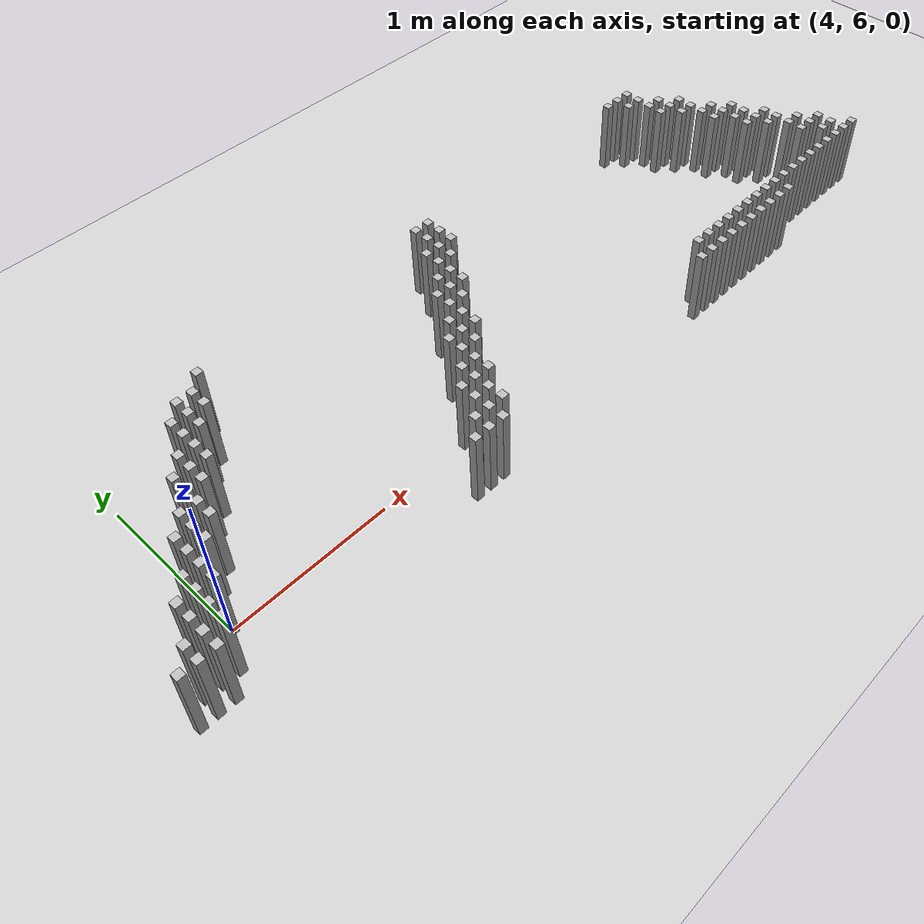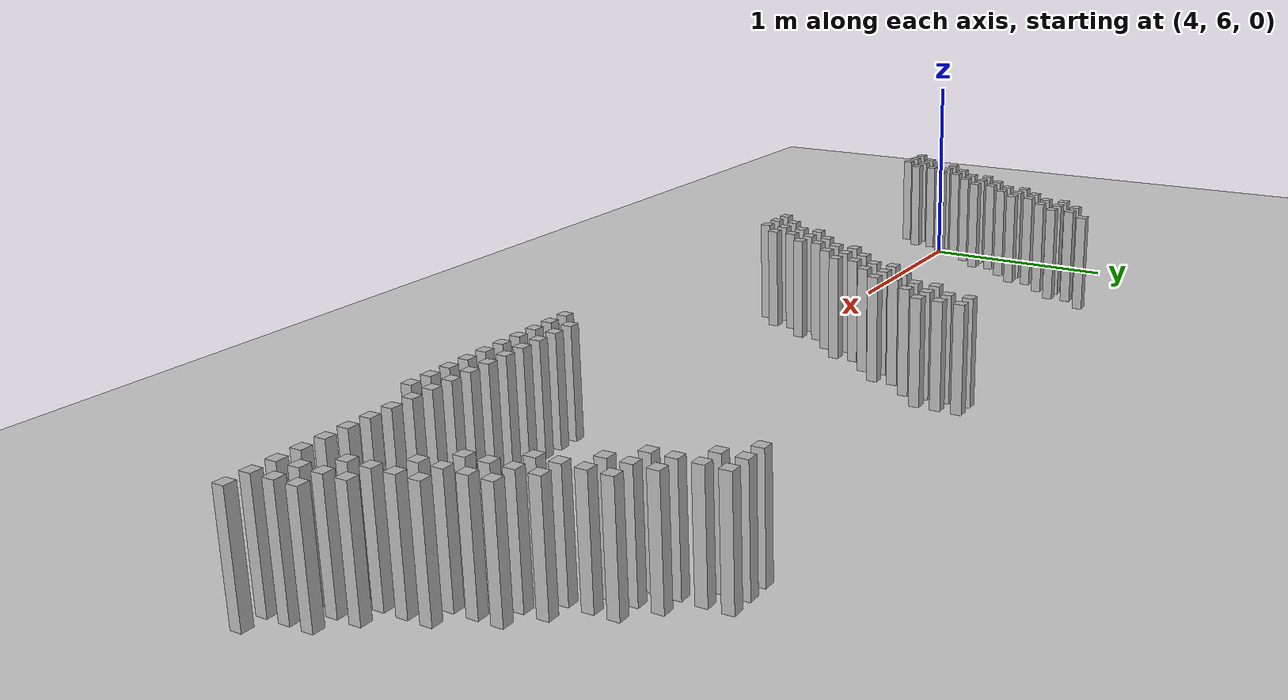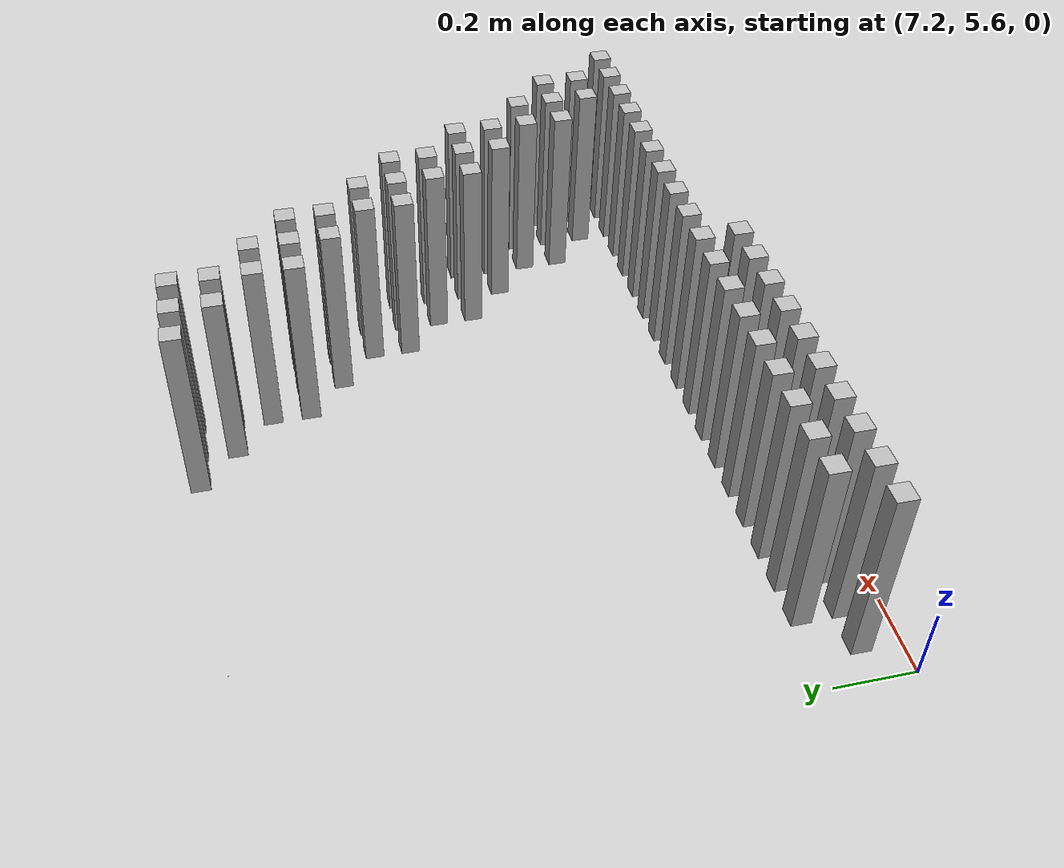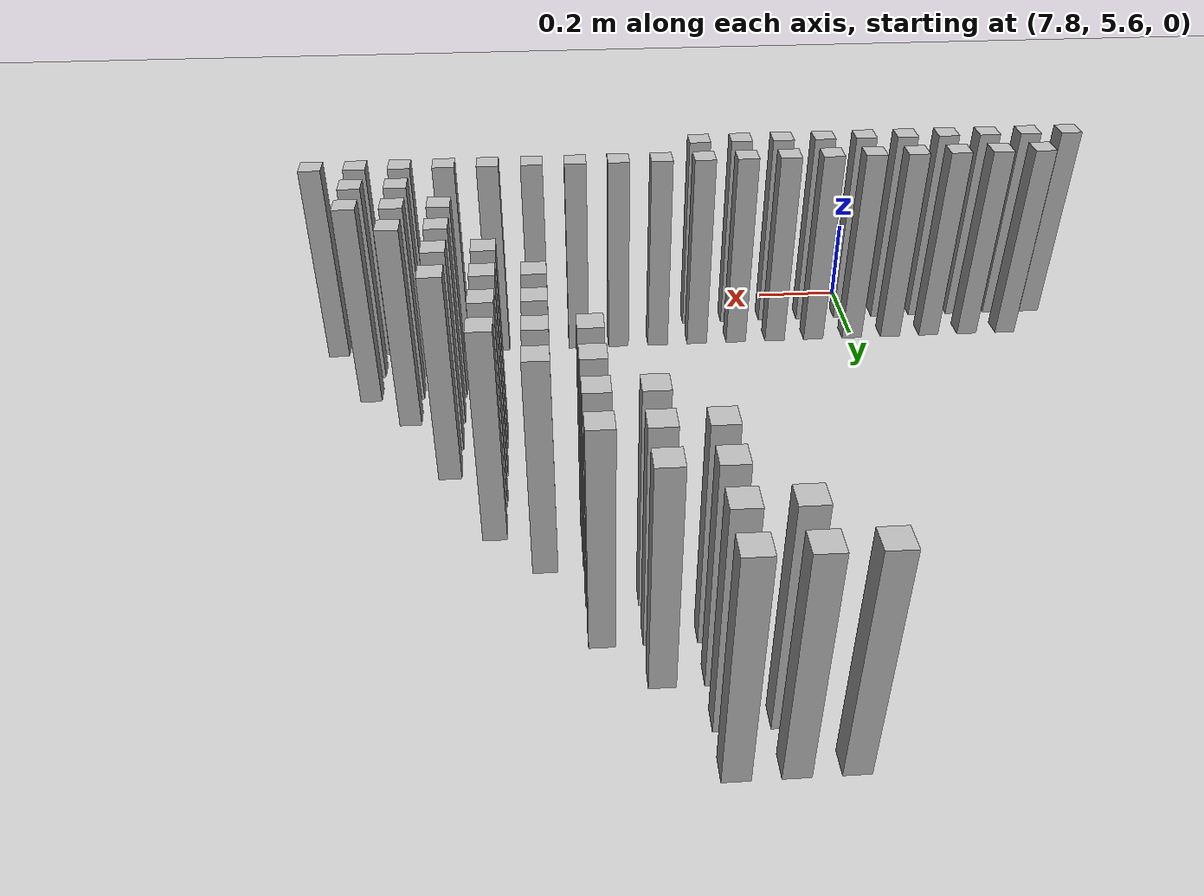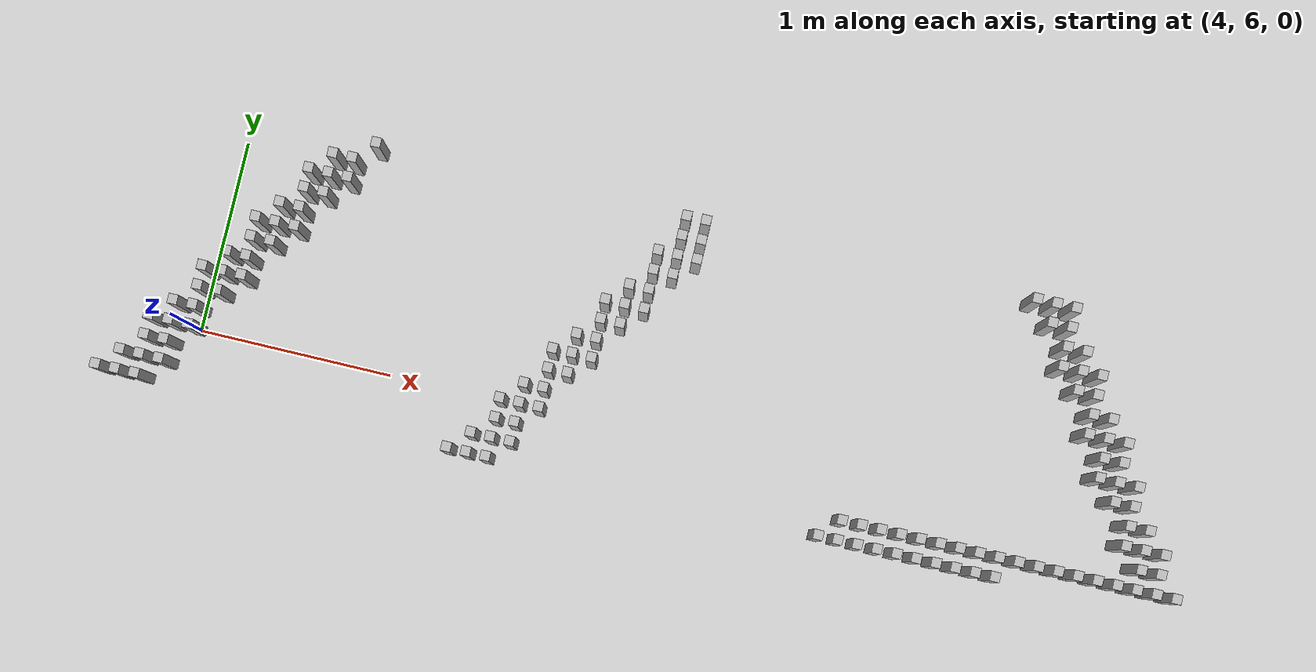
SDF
<sdf version="1.6">
 <world name="default_world">
  <include><uri>model://sun</uri></include>
  <include><uri>model://ground_plane</uri></include>
  <model name="wall_132">
   <static>true</static>
   <link name="link">
    <collision name="collision"><geometry><box><size>0.05 0.05 0.5</size></box></geometry></collision>
    <visual name="visual"><geometry><box><size>0.05 0.05 0.5</size></box></geometry></visual>
    <pose>4.7 7.1000000000000005 0.25 0 0 0</pose>
   </link>
  </model>
  <model name="wall_133">
   <static>true</static>
   <link name="link">
    <collision name="collision"><geometry><box><size>0.05 0.05 0.5</size></box></geometry></collision>
    <visual name="visual"><geometry><box><size>0.05 0.05 0.5</size></box></geometry></visual>
    <pose>6.300000000000001 7.1000000000000005 0.25 0 0 0</pose>
   </link>
  </model>
  <model name="wall_134">
   <static>true</static>
   <link name="link">
    <collision name="collision"><geometry><box><size>0.05 0.05 0.5</size></box></geometry></collision>
    <visual name="visual"><geometry><box><size>0.05 0.05 0.5</size></box></geometry></visual>
    <pose>6.4 7.1000000000000005 0.25 0 0 0</pose>
   </link>
  </model>
  <model name="wall_135">
   <static>true</static>
   <link name="link">
    <collision name="collision"><geometry><box><size>0.05 0.05 0.5</size></box></geometry></collision>
    <visual name="visual"><geometry><box><size>0.05 0.05 0.5</size></box></geometry></visual>
    <pose>8.1 7.1000000000000005 0.25 0 0 0</pose>
   </link>
  </model>
  <model name="wall_136">
   <static>true</static>
   <link name="link">
    <collision name="collision"><geometry><box><size>0.05 0.05 0.5</size></box></geometry></collision>
    <visual name="visual"><geometry><box><size>0.05 0.05 0.5</size></box></geometry></visual>
    <pose>8.200000000000001 7.1000000000000005 0.25 0 0 0</pose>
   </link>
  </model>
  <model name="wall_137">
   <static>true</static>
   <link name="link">
    <collision name="collision"><geometry><box><size>0.05 0.05 0.5</size></box></geometry></collision>
    <visual name="visual"><geometry><box><size>0.05 0.05 0.5</size></box></geometry></visual>
    <pose>8.3 7.1000000000000005 0.25 0 0 0</pose>
   </link>
  </model>
  <model name="wall_138">
   <static>true</static>
   <link name="link">
    <collision name="collision"><geometry><box><size>0.05 0.05 0.5</size></box></geometry></collision>
    <visual name="visual"><geometry><box><size>0.05 0.05 0.5</size></box></geometry></visual>
    <pose>4.5 7.0 0.25 0 0 0</pose>
   </link>
  </model>
  <model name="wall_139">
   <static>true</static>
   <link name="link">
    <collision name="collision"><geometry><box><size>0.05 0.05 0.5</size></box></geometry></collision>
    <visual name="visual"><geometry><box><size>0.05 0.05 0.5</size></box></geometry></visual>
    <pose>4.6000000000000005 7.0 0.25 0 0 0</pose>
   </link>
  </model>
  <model name="wall_140">
   <static>true</static>
   <link name="link">
    <collision name="collision"><geometry><box><size>0.05 0.05 0.5</size></box></geometry></collision>
    <visual name="visual"><geometry><box><size>0.05 0.05 0.5</size></box></geometry></visual>
    <pose>6.300000000000001 7.0 0.25 0 0 0</pose>
   </link>
  </model>
  <model name="wall_141">
   <static>true</static>
   <link name="link">
    <collision name="collision"><geometry><box><size>0.05 0.05 0.5</size></box></geometry></collision>
    <visual name="visual"><geometry><box><size>0.05 0.05 0.5</size></box></geometry></visual>
    <pose>6.4 7.0 0.25 0 0 0</pose>
   </link>
  </model>
  <model name="wall_142">
   <static>true</static>
   <link name="link">
    <collision name="collision"><geometry><box><size>0.05 0.05 0.5</size></box></geometry></collision>
    <visual name="visual"><geometry><box><size>0.05 0.05 0.5</size></box></geometry></visual>
    <pose>8.200000000000001 7.0 0.25 0 0 0</pose>
   </link>
  </model>
  <model name="wall_143">
   <static>true</static>
   <link name="link">
    <collision name="collision"><geometry><box><size>0.05 0.05 0.5</size></box></geometry></collision>
    <visual name="visual"><geometry><box><size>0.05 0.05 0.5</size></box></geometry></visual>
    <pose>8.3 7.0 0.25 0 0 0</pose>
   </link>
  </model>
  <model name="wall_144">
   <static>true</static>
   <link name="link">
    <collision name="collision"><geometry><box><size>0.05 0.05 0.5</size></box></geometry></collision>
    <visual name="visual"><geometry><box><size>0.05 0.05 0.5</size></box></geometry></visual>
    <pose>4.4 6.9 0.25 0 0 0</pose>
   </link>
  </model>
  <model name="wall_145">
   <static>true</static>
   <link name="link">
    <collision name="collision"><geometry><box><size>0.05 0.05 0.5</size></box></geometry></collision>
    <visual name="visual"><geometry><box><size>0.05 0.05 0.5</size></box></geometry></visual>
    <pose>4.5 6.9 0.25 0 0 0</pose>
   </link>
  </model>
  <model name="wall_146">
   <static>true</static>
   <link name="link">
    <collision name="collision"><geometry><box><size>0.05 0.05 0.5</size></box></geometry></collision>
    <visual name="visual"><geometry><box><size>0.05 0.05 0.5</size></box></geometry></visual>
    <pose>4.6000000000000005 6.9 0.25 0 0 0</pose>
   </link>
  </model>
  <model name="wall_147">
   <static>true</static>
   <link name="link">
    <collision name="collision"><geometry><box><size>0.05 0.05 0.5</size></box></geometry></collision>
    <visual name="visual"><geometry><box><size>0.05 0.05 0.5</size></box></geometry></visual>
    <pose>6.2 6.9 0.25 0 0 0</pose>
   </link>
  </model>
  <model name="wall_148">
   <static>true</static>
   <link name="link">
    <collision name="collision"><geometry><box><size>0.05 0.05 0.5</size></box></geometry></collision>
    <visual name="visual"><geometry><box><size>0.05 0.05 0.5</size></box></geometry></visual>
    <pose>6.300000000000001 6.9 0.25 0 0 0</pose>
   </link>
  </model>
  <model name="wall_149">
   <static>true</static>
   <link name="link">
    <collision name="collision"><geometry><box><size>0.05 0.05 0.5</size></box></geometry></collision>
    <visual name="visual"><geometry><box><size>0.05 0.05 0.5</size></box></geometry></visual>
    <pose>6.4 6.9 0.25 0 0 0</pose>
   </link>
  </model>
  <model name="wall_150">
   <static>true</static>
   <link name="link">
    <collision name="collision"><geometry><box><size>0.05 0.05 0.5</size></box></geometry></collision>
    <visual name="visual"><geometry><box><size>0.05 0.05 0.5</size></box></geometry></visual>
    <pose>8.3 6.9 0.25 0 0 0</pose>
   </link>
  </model>
  <model name="wall_151">
   <static>true</static>
   <link name="link">
    <collision name="collision"><geometry><box><size>0.05 0.05 0.5</size></box></geometry></collision>
    <visual name="visual"><geometry><box><size>0.05 0.05 0.5</size></box></geometry></visual>
    <pose>8.4 6.9 0.25 0 0 0</pose>
   </link>
  </model>
  <model name="wall_152">
   <static>true</static>
   <link name="link">
    <collision name="collision"><geometry><box><size>0.05 0.05 0.5</size></box></geometry></collision>
    <visual name="visual"><geometry><box><size>0.05 0.05 0.5</size></box></geometry></visual>
    <pose>4.4 6.800000000000001 0.25 0 0 0</pose>
   </link>
  </model>
  <model name="wall_153">
   <static>true</static>
   <link name="link">
    <collision name="collision"><geometry><box><size>0.05 0.05 0.5</size></box></geometry></collision>
    <visual name="visual"><geometry><box><size>0.05 0.05 0.5</size></box></geometry></visual>
    <pose>4.5 6.800000000000001 0.25 0 0 0</pose>
   </link>
  </model>
  <model name="wall_154">
   <static>true</static>
   <link name="link">
    <collision name="collision"><geometry><box><size>0.05 0.05 0.5</size></box></geometry></collision>
    <visual name="visual"><geometry><box><size>0.05 0.05 0.5</size></box></geometry></visual>
    <pose>6.2 6.800000000000001 0.25 0 0 0</pose>
   </link>
  </model>
  <model name="wall_155">
   <static>true</static>
   <link name="link">
    <collision name="collision"><geometry><box><size>0.05 0.05 0.5</size></box></geometry></collision>
    <visual name="visual"><geometry><box><size>0.05 0.05 0.5</size></box></geometry></visual>
    <pose>6.300000000000001 6.800000000000001 0.25 0 0 0</pose>
   </link>
  </model>
  <model name="wall_156">
   <static>true</static>
   <link name="link">
    <collision name="collision"><geometry><box><size>0.05 0.05 0.5</size></box></geometry></collision>
    <visual name="visual"><geometry><box><size>0.05 0.05 0.5</size></box></geometry></visual>
    <pose>8.3 6.800000000000001 0.25 0 0 0</pose>
   </link>
  </model>
  <model name="wall_157">
   <static>true</static>
   <link name="link">
    <collision name="collision"><geometry><box><size>0.05 0.05 0.5</size></box></geometry></collision>
    <visual name="visual"><geometry><box><size>0.05 0.05 0.5</size></box></geometry></visual>
    <pose>8.4 6.800000000000001 0.25 0 0 0</pose>
   </link>
  </model>
  <model name="wall_158">
   <static>true</static>
   <link name="link">
    <collision name="collision"><geometry><box><size>0.05 0.05 0.5</size></box></geometry></collision>
    <visual name="visual"><geometry><box><size>0.05 0.05 0.5</size></box></geometry></visual>
    <pose>8.5 6.800000000000001 0.25 0 0 0</pose>
   </link>
  </model>
  <model name="wall_159">
   <static>true</static>
   <link name="link">
    <collision name="collision"><geometry><box><size>0.05 0.05 0.5</size></box></geometry></collision>
    <visual name="visual"><geometry><box><size>0.05 0.05 0.5</size></box></geometry></visual>
    <pose>4.3 6.7 0.25 0 0 0</pose>
   </link>
  </model>
  <model name="wall_160">
   <static>true</static>
   <link name="link">
    <collision name="collision"><geometry><box><size>0.05 0.05 0.5</size></box></geometry></collision>
    <visual name="visual"><geometry><box><size>0.05 0.05 0.5</size></box></geometry></visual>
    <pose>4.4 6.7 0.25 0 0 0</pose>
   </link>
  </model>
  <model name="wall_161">
   <static>true</static>
   <link name="link">
    <collision name="collision"><geometry><box><size>0.05 0.05 0.5</size></box></geometry></collision>
    <visual name="visual"><geometry><box><size>0.05 0.05 0.5</size></box></geometry></visual>
    <pose>6.1000000000000005 6.7 0.25 0 0 0</pose>
   </link>
  </model>
  <model name="wall_162">
   <static>true</static>
   <link name="link">
    <collision name="collision"><geometry><box><size>0.05 0.05 0.5</size></box></geometry></collision>
    <visual name="visual"><geometry><box><size>0.05 0.05 0.5</size></box></geometry></visual>
    <pose>6.2 6.7 0.25 0 0 0</pose>
   </link>
  </model>
  <model name="wall_163">
   <static>true</static>
   <link name="link">
    <collision name="collision"><geometry><box><size>0.05 0.05 0.5</size></box></geometry></collision>
    <visual name="visual"><geometry><box><size>0.05 0.05 0.5</size></box></geometry></visual>
    <pose>8.4 6.7 0.25 0 0 0</pose>
   </link>
  </model>
  <model name="wall_164">
   <static>true</static>
   <link name="link">
    <collision name="collision"><geometry><box><size>0.05 0.05 0.5</size></box></geometry></collision>
    <visual name="visual"><geometry><box><size>0.05 0.05 0.5</size></box></geometry></visual>
    <pose>8.5 6.7 0.25 0 0 0</pose>
   </link>
  </model>
  <model name="wall_165">
   <static>true</static>
   <link name="link">
    <collision name="collision"><geometry><box><size>0.05 0.05 0.5</size></box></geometry></collision>
    <visual name="visual"><geometry><box><size>0.05 0.05 0.5</size></box></geometry></visual>
    <pose>4.2 6.6000000000000005 0.25 0 0 0</pose>
   </link>
  </model>
  <model name="wall_166">
   <static>true</static>
   <link name="link">
    <collision name="collision"><geometry><box><size>0.05 0.05 0.5</size></box></geometry></collision>
    <visual name="visual"><geometry><box><size>0.05 0.05 0.5</size></box></geometry></visual>
    <pose>4.3 6.6000000000000005 0.25 0 0 0</pose>
   </link>
  </model>
  <model name="wall_167">
   <static>true</static>
   <link name="link">
    <collision name="collision"><geometry><box><size>0.05 0.05 0.5</size></box></geometry></collision>
    <visual name="visual"><geometry><box><size>0.05 0.05 0.5</size></box></geometry></visual>
    <pose>4.4 6.6000000000000005 0.25 0 0 0</pose>
   </link>
  </model>
  <model name="wall_168">
   <static>true</static>
   <link name="link">
    <collision name="collision"><geometry><box><size>0.05 0.05 0.5</size></box></geometry></collision>
    <visual name="visual"><geometry><box><size>0.05 0.05 0.5</size></box></geometry></visual>
    <pose>6.0 6.6000000000000005 0.25 0 0 0</pose>
   </link>
  </model>
  <model name="wall_169">
   <static>true</static>
   <link name="link">
    <collision name="collision"><geometry><box><size>0.05 0.05 0.5</size></box></geometry></collision>
    <visual name="visual"><geometry><box><size>0.05 0.05 0.5</size></box></geometry></visual>
    <pose>6.1000000000000005 6.6000000000000005 0.25 0 0 0</pose>
   </link>
  </model>
  <model name="wall_170">
   <static>true</static>
   <link name="link">
    <collision name="collision"><geometry><box><size>0.05 0.05 0.5</size></box></geometry></collision>
    <visual name="visual"><geometry><box><size>0.05 0.05 0.5</size></box></geometry></visual>
    <pose>6.2 6.6000000000000005 0.25 0 0 0</pose>
   </link>
  </model>
  <model name="wall_171">
   <static>true</static>
   <link name="link">
    <collision name="collision"><geometry><box><size>0.05 0.05 0.5</size></box></geometry></collision>
    <visual name="visual"><geometry><box><size>0.05 0.05 0.5</size></box></geometry></visual>
    <pose>8.5 6.6000000000000005 0.25 0 0 0</pose>
   </link>
  </model>
  <model name="wall_172">
   <static>true</static>
   <link name="link">
    <collision name="collision"><geometry><box><size>0.05 0.05 0.5</size></box></geometry></collision>
    <visual name="visual"><geometry><box><size>0.05 0.05 0.5</size></box></geometry></visual>
    <pose>8.6 6.6000000000000005 0.25 0 0 0</pose>
   </link>
  </model>
  <model name="wall_173">
   <static>true</static>
   <link name="link">
    <collision name="collision"><geometry><box><size>0.05 0.05 0.5</size></box></geometry></collision>
    <visual name="visual"><geometry><box><size>0.05 0.05 0.5</size></box></geometry></visual>
    <pose>4.2 6.5 0.25 0 0 0</pose>
   </link>
  </model>
  <model name="wall_174">
   <static>true</static>
   <link name="link">
    <collision name="collision"><geometry><box><size>0.05 0.05 0.5</size></box></geometry></collision>
    <visual name="visual"><geometry><box><size>0.05 0.05 0.5</size></box></geometry></visual>
    <pose>4.3 6.5 0.25 0 0 0</pose>
   </link>
  </model>
  <model name="wall_175">
   <static>true</static>
   <link name="link">
    <collision name="collision"><geometry><box><size>0.05 0.05 0.5</size></box></geometry></collision>
    <visual name="visual"><geometry><box><size>0.05 0.05 0.5</size></box></geometry></visual>
    <pose>6.0 6.5 0.25 0 0 0</pose>
   </link>
  </model>
  <model name="wall_176">
   <static>true</static>
   <link name="link">
    <collision name="collision"><geometry><box><size>0.05 0.05 0.5</size></box></geometry></collision>
    <visual name="visual"><geometry><box><size>0.05 0.05 0.5</size></box></geometry></visual>
    <pose>6.1000000000000005 6.5 0.25 0 0 0</pose>
   </link>
  </model>
  <model name="wall_177">
   <static>true</static>
   <link name="link">
    <collision name="collision"><geometry><box><size>0.05 0.05 0.5</size></box></geometry></collision>
    <visual name="visual"><geometry><box><size>0.05 0.05 0.5</size></box></geometry></visual>
    <pose>8.5 6.5 0.25 0 0 0</pose>
   </link>
  </model>
  <model name="wall_178">
   <static>true</static>
   <link name="link">
    <collision name="collision"><geometry><box><size>0.05 0.05 0.5</size></box></geometry></collision>
    <visual name="visual"><geometry><box><size>0.05 0.05 0.5</size></box></geometry></visual>
    <pose>8.6 6.5 0.25 0 0 0</pose>
   </link>
  </model>
  <model name="wall_179">
   <static>true</static>
   <link name="link">
    <collision name="collision"><geometry><box><size>0.05 0.05 0.5</size></box></geometry></collision>
    <visual name="visual"><geometry><box><size>0.05 0.05 0.5</size></box></geometry></visual>
    <pose>8.700000000000001 6.5 0.25 0 0 0</pose>
   </link>
  </model>
  <model name="wall_180">
   <static>true</static>
   <link name="link">
    <collision name="collision"><geometry><box><size>0.05 0.05 0.5</size></box></geometry></collision>
    <visual name="visual"><geometry><box><size>0.05 0.05 0.5</size></box></geometry></visual>
    <pose>4.1000000000000005 6.4 0.25 0 0 0</pose>
   </link>
  </model>
  <model name="wall_181">
   <static>true</static>
   <link name="link">
    <collision name="collision"><geometry><box><size>0.05 0.05 0.5</size></box></geometry></collision>
    <visual name="visual"><geometry><box><size>0.05 0.05 0.5</size></box></geometry></visual>
    <pose>4.2 6.4 0.25 0 0 0</pose>
   </link>
  </model>
  <model name="wall_182">
   <static>true</static>
   <link name="link">
    <collision name="collision"><geometry><box><size>0.05 0.05 0.5</size></box></geometry></collision>
    <visual name="visual"><geometry><box><size>0.05 0.05 0.5</size></box></geometry></visual>
    <pose>5.9 6.4 0.25 0 0 0</pose>
   </link>
  </model>
  <model name="wall_183">
   <static>true</static>
   <link name="link">
    <collision name="collision"><geometry><box><size>0.05 0.05 0.5</size></box></geometry></collision>
    <visual name="visual"><geometry><box><size>0.05 0.05 0.5</size></box></geometry></visual>
    <pose>6.0 6.4 0.25 0 0 0</pose>
   </link>
  </model>
  <model name="wall_184">
   <static>true</static>
   <link name="link">
    <collision name="collision"><geometry><box><size>0.05 0.05 0.5</size></box></geometry></collision>
    <visual name="visual"><geometry><box><size>0.05 0.05 0.5</size></box></geometry></visual>
    <pose>8.6 6.4 0.25 0 0 0</pose>
   </link>
  </model>
  <model name="wall_185">
   <static>true</static>
   <link name="link">
    <collision name="collision"><geometry><box><size>0.05 0.05 0.5</size></box></geometry></collision>
    <visual name="visual"><geometry><box><size>0.05 0.05 0.5</size></box></geometry></visual>
    <pose>8.700000000000001 6.4 0.25 0 0 0</pose>
   </link>
  </model>
  <model name="wall_186">
   <static>true</static>
   <link name="link">
    <collision name="collision"><geometry><box><size>0.05 0.05 0.5</size></box></geometry></collision>
    <visual name="visual"><geometry><box><size>0.05 0.05 0.5</size></box></geometry></visual>
    <pose>4.0 6.300000000000001 0.25 0 0 0</pose>
   </link>
  </model>
  <model name="wall_187">
   <static>true</static>
   <link name="link">
    <collision name="collision"><geometry><box><size>0.05 0.05 0.5</size></box></geometry></collision>
    <visual name="visual"><geometry><box><size>0.05 0.05 0.5</size></box></geometry></visual>
    <pose>4.1000000000000005 6.300000000000001 0.25 0 0 0</pose>
   </link>
  </model>
  <model name="wall_188">
   <static>true</static>
   <link name="link">
    <collision name="collision"><geometry><box><size>0.05 0.05 0.5</size></box></geometry></collision>
    <visual name="visual"><geometry><box><size>0.05 0.05 0.5</size></box></geometry></visual>
    <pose>4.2 6.300000000000001 0.25 0 0 0</pose>
   </link>
  </model>
  <model name="wall_189">
   <static>true</static>
   <link name="link">
    <collision name="collision"><geometry><box><size>0.05 0.05 0.5</size></box></geometry></collision>
    <visual name="visual"><geometry><box><size>0.05 0.05 0.5</size></box></geometry></visual>
    <pose>5.800000000000001 6.300000000000001 0.25 0 0 0</pose>
   </link>
  </model>
  <model name="wall_190">
   <static>true</static>
   <link name="link">
    <collision name="collision"><geometry><box><size>0.05 0.05 0.5</size></box></geometry></collision>
    <visual name="visual"><geometry><box><size>0.05 0.05 0.5</size></box></geometry></visual>
    <pose>5.9 6.300000000000001 0.25 0 0 0</pose>
   </link>
  </model>
  <model name="wall_191">
   <static>true</static>
   <link name="link">
    <collision name="collision"><geometry><box><size>0.05 0.05 0.5</size></box></geometry></collision>
    <visual name="visual"><geometry><box><size>0.05 0.05 0.5</size></box></geometry></visual>
    <pose>6.0 6.300000000000001 0.25 0 0 0</pose>
   </link>
  </model>
  <model name="wall_192">
   <static>true</static>
   <link name="link">
    <collision name="collision"><geometry><box><size>0.05 0.05 0.5</size></box></geometry></collision>
    <visual name="visual"><geometry><box><size>0.05 0.05 0.5</size></box></geometry></visual>
    <pose>8.6 6.300000000000001 0.25 0 0 0</pose>
   </link>
  </model>
  <model name="wall_193">
   <static>true</static>
   <link name="link">
    <collision name="collision"><geometry><box><size>0.05 0.05 0.5</size></box></geometry></collision>
    <visual name="visual"><geometry><box><size>0.05 0.05 0.5</size></box></geometry></visual>
    <pose>8.700000000000001 6.300000000000001 0.25 0 0 0</pose>
   </link>
  </model>
  <model name="wall_194">
   <static>true</static>
   <link name="link">
    <collision name="collision"><geometry><box><size>0.05 0.05 0.5</size></box></geometry></collision>
    <visual name="visual"><geometry><box><size>0.05 0.05 0.5</size></box></geometry></visual>
    <pose>8.8 6.300000000000001 0.25 0 0 0</pose>
   </link>
  </model>
  <model name="wall_195">
   <static>true</static>
   <link name="link">
    <collision name="collision"><geometry><box><size>0.05 0.05 0.5</size></box></geometry></collision>
    <visual name="visual"><geometry><box><size>0.05 0.05 0.5</size></box></geometry></visual>
    <pose>4.0 6.2 0.25 0 0 0</pose>
   </link>
  </model>
  <model name="wall_196">
   <static>true</static>
   <link name="link">
    <collision name="collision"><geometry><box><size>0.05 0.05 0.5</size></box></geometry></collision>
    <visual name="visual"><geometry><box><size>0.05 0.05 0.5</size></box></geometry></visual>
    <pose>4.1000000000000005 6.2 0.25 0 0 0</pose>
   </link>
  </model>
  <model name="wall_197">
   <static>true</static>
   <link name="link">
    <collision name="collision"><geometry><box><size>0.05 0.05 0.5</size></box></geometry></collision>
    <visual name="visual"><geometry><box><size>0.05 0.05 0.5</size></box></geometry></visual>
    <pose>5.800000000000001 6.2 0.25 0 0 0</pose>
   </link>
  </model>
  <model name="wall_198">
   <static>true</static>
   <link name="link">
    <collision name="collision"><geometry><box><size>0.05 0.05 0.5</size></box></geometry></collision>
    <visual name="visual"><geometry><box><size>0.05 0.05 0.5</size></box></geometry></visual>
    <pose>5.9 6.2 0.25 0 0 0</pose>
   </link>
  </model>
  <model name="wall_199">
   <static>true</static>
   <link name="link">
    <collision name="collision"><geometry><box><size>0.05 0.05 0.5</size></box></geometry></collision>
    <visual name="visual"><geometry><box><size>0.05 0.05 0.5</size></box></geometry></visual>
    <pose>8.700000000000001 6.2 0.25 0 0 0</pose>
   </link>
  </model>
  <model name="wall_200">
   <static>true</static>
   <link name="link">
    <collision name="collision"><geometry><box><size>0.05 0.05 0.5</size></box></geometry></collision>
    <visual name="visual"><geometry><box><size>0.05 0.05 0.5</size></box></geometry></visual>
    <pose>8.8 6.2 0.25 0 0 0</pose>
   </link>
  </model>
  <model name="wall_201">
   <static>true</static>
   <link name="link">
    <collision name="collision"><geometry><box><size>0.05 0.05 0.5</size></box></geometry></collision>
    <visual name="visual"><geometry><box><size>0.05 0.05 0.5</size></box></geometry></visual>
    <pose>3.9000000000000004 6.1000000000000005 0.25 0 0 0</pose>
   </link>
  </model>
  <model name="wall_202">
   <static>true</static>
   <link name="link">
    <collision name="collision"><geometry><box><size>0.05 0.05 0.5</size></box></geometry></collision>
    <visual name="visual"><geometry><box><size>0.05 0.05 0.5</size></box></geometry></visual>
    <pose>4.0 6.1000000000000005 0.25 0 0 0</pose>
   </link>
  </model>
  <model name="wall_203">
   <static>true</static>
   <link name="link">
    <collision name="collision"><geometry><box><size>0.05 0.05 0.5</size></box></geometry></collision>
    <visual name="visual"><geometry><box><size>0.05 0.05 0.5</size></box></geometry></visual>
    <pose>5.7 6.1000000000000005 0.25 0 0 0</pose>
   </link>
  </model>
  <model name="wall_204">
   <static>true</static>
   <link name="link">
    <collision name="collision"><geometry><box><size>0.05 0.05 0.5</size></box></geometry></collision>
    <visual name="visual"><geometry><box><size>0.05 0.05 0.5</size></box></geometry></visual>
    <pose>5.800000000000001 6.1000000000000005 0.25 0 0 0</pose>
   </link>
  </model>
  <model name="wall_205">
   <static>true</static>
   <link name="link">
    <collision name="collision"><geometry><box><size>0.05 0.05 0.5</size></box></geometry></collision>
    <visual name="visual"><geometry><box><size>0.05 0.05 0.5</size></box></geometry></visual>
    <pose>8.8 6.1000000000000005 0.25 0 0 0</pose>
   </link>
  </model>
  <model name="wall_206">
   <static>true</static>
   <link name="link">
    <collision name="collision"><geometry><box><size>0.05 0.05 0.5</size></box></geometry></collision>
    <visual name="visual"><geometry><box><size>0.05 0.05 0.5</size></box></geometry></visual>
    <pose>8.9 6.1000000000000005 0.25 0 0 0</pose>
   </link>
  </model>
  <model name="wall_207">
   <static>true</static>
   <link name="link">
    <collision name="collision"><geometry><box><size>0.05 0.05 0.5</size></box></geometry></collision>
    <visual name="visual"><geometry><box><size>0.05 0.05 0.5</size></box></geometry></visual>
    <pose>3.8000000000000003 6.0 0.25 0 0 0</pose>
   </link>
  </model>
  <model name="wall_208">
   <static>true</static>
   <link name="link">
    <collision name="collision"><geometry><box><size>0.05 0.05 0.5</size></box></geometry></collision>
    <visual name="visual"><geometry><box><size>0.05 0.05 0.5</size></box></geometry></visual>
    <pose>3.9000000000000004 6.0 0.25 0 0 0</pose>
   </link>
  </model>
  <model name="wall_209">
   <static>true</static>
   <link name="link">
    <collision name="collision"><geometry><box><size>0.05 0.05 0.5</size></box></geometry></collision>
    <visual name="visual"><geometry><box><size>0.05 0.05 0.5</size></box></geometry></visual>
    <pose>4.0 6.0 0.25 0 0 0</pose>
   </link>
  </model>
  <model name="wall_210">
   <static>true</static>
   <link name="link">
    <collision name="collision"><geometry><box><size>0.05 0.05 0.5</size></box></geometry></collision>
    <visual name="visual"><geometry><box><size>0.05 0.05 0.5</size></box></geometry></visual>
    <pose>5.6000000000000005 6.0 0.25 0 0 0</pose>
   </link>
  </model>
  <model name="wall_211">
   <static>true</static>
   <link name="link">
    <collision name="collision"><geometry><box><size>0.05 0.05 0.5</size></box></geometry></collision>
    <visual name="visual"><geometry><box><size>0.05 0.05 0.5</size></box></geometry></visual>
    <pose>5.7 6.0 0.25 0 0 0</pose>
   </link>
  </model>
  <model name="wall_212">
   <static>true</static>
   <link name="link">
    <collision name="collision"><geometry><box><size>0.05 0.05 0.5</size></box></geometry></collision>
    <visual name="visual"><geometry><box><size>0.05 0.05 0.5</size></box></geometry></visual>
    <pose>5.800000000000001 6.0 0.25 0 0 0</pose>
   </link>
  </model>
  <model name="wall_213">
   <static>true</static>
   <link name="link">
    <collision name="collision"><geometry><box><size>0.05 0.05 0.5</size></box></geometry></collision>
    <visual name="visual"><geometry><box><size>0.05 0.05 0.5</size></box></geometry></visual>
    <pose>8.8 6.0 0.25 0 0 0</pose>
   </link>
  </model>
  <model name="wall_214">
   <static>true</static>
   <link name="link">
    <collision name="collision"><geometry><box><size>0.05 0.05 0.5</size></box></geometry></collision>
    <visual name="visual"><geometry><box><size>0.05 0.05 0.5</size></box></geometry></visual>
    <pose>8.9 6.0 0.25 0 0 0</pose>
   </link>
  </model>
  <model name="wall_215">
   <static>true</static>
   <link name="link">
    <collision name="collision"><geometry><box><size>0.05 0.05 0.5</size></box></geometry></collision>
    <visual name="visual"><geometry><box><size>0.05 0.05 0.5</size></box></geometry></visual>
    <pose>9.0 6.0 0.25 0 0 0</pose>
   </link>
  </model>
  <model name="wall_216">
   <static>true</static>
   <link name="link">
    <collision name="collision"><geometry><box><size>0.05 0.05 0.5</size></box></geometry></collision>
    <visual name="visual"><geometry><box><size>0.05 0.05 0.5</size></box></geometry></visual>
    <pose>3.8000000000000003 5.9 0.25 0 0 0</pose>
   </link>
  </model>
  <model name="wall_217">
   <static>true</static>
   <link name="link">
    <collision name="collision"><geometry><box><size>0.05 0.05 0.5</size></box></geometry></collision>
    <visual name="visual"><geometry><box><size>0.05 0.05 0.5</size></box></geometry></visual>
    <pose>3.9000000000000004 5.9 0.25 0 0 0</pose>
   </link>
  </model>
  <model name="wall_218">
   <static>true</static>
   <link name="link">
    <collision name="collision"><geometry><box><size>0.05 0.05 0.5</size></box></geometry></collision>
    <visual name="visual"><geometry><box><size>0.05 0.05 0.5</size></box></geometry></visual>
    <pose>5.6000000000000005 5.9 0.25 0 0 0</pose>
   </link>
  </model>
  <model name="wall_219">
   <static>true</static>
   <link name="link">
    <collision name="collision"><geometry><box><size>0.05 0.05 0.5</size></box></geometry></collision>
    <visual name="visual"><geometry><box><size>0.05 0.05 0.5</size></box></geometry></visual>
    <pose>5.7 5.9 0.25 0 0 0</pose>
   </link>
  </model>
  <model name="wall_220">
   <static>true</static>
   <link name="link">
    <collision name="collision"><geometry><box><size>0.05 0.05 0.5</size></box></geometry></collision>
    <visual name="visual"><geometry><box><size>0.05 0.05 0.5</size></box></geometry></visual>
    <pose>8.9 5.9 0.25 0 0 0</pose>
   </link>
  </model>
  <model name="wall_221">
   <static>true</static>
   <link name="link">
    <collision name="collision"><geometry><box><size>0.05 0.05 0.5</size></box></geometry></collision>
    <visual name="visual"><geometry><box><size>0.05 0.05 0.5</size></box></geometry></visual>
    <pose>9.0 5.9 0.25 0 0 0</pose>
   </link>
  </model>
  <model name="wall_222">
   <static>true</static>
   <link name="link">
    <collision name="collision"><geometry><box><size>0.05 0.05 0.5</size></box></geometry></collision>
    <visual name="visual"><geometry><box><size>0.05 0.05 0.5</size></box></geometry></visual>
    <pose>3.7 5.800000000000001 0.25 0 0 0</pose>
   </link>
  </model>
  <model name="wall_223">
   <static>true</static>
   <link name="link">
    <collision name="collision"><geometry><box><size>0.05 0.05 0.5</size></box></geometry></collision>
    <visual name="visual"><geometry><box><size>0.05 0.05 0.5</size></box></geometry></visual>
    <pose>3.8000000000000003 5.800000000000001 0.25 0 0 0</pose>
   </link>
  </model>
  <model name="wall_224">
   <static>true</static>
   <link name="link">
    <collision name="collision"><geometry><box><size>0.05 0.05 0.5</size></box></geometry></collision>
    <visual name="visual"><geometry><box><size>0.05 0.05 0.5</size></box></geometry></visual>
    <pose>3.9000000000000004 5.800000000000001 0.25 0 0 0</pose>
   </link>
  </model>
  <model name="wall_225">
   <static>true</static>
   <link name="link">
    <collision name="collision"><geometry><box><size>0.05 0.05 0.5</size></box></geometry></collision>
    <visual name="visual"><geometry><box><size>0.05 0.05 0.5</size></box></geometry></visual>
    <pose>5.5 5.800000000000001 0.25 0 0 0</pose>
   </link>
  </model>
  <model name="wall_226">
   <static>true</static>
   <link name="link">
    <collision name="collision"><geometry><box><size>0.05 0.05 0.5</size></box></geometry></collision>
    <visual name="visual"><geometry><box><size>0.05 0.05 0.5</size></box></geometry></visual>
    <pose>5.6000000000000005 5.800000000000001 0.25 0 0 0</pose>
   </link>
  </model>
  <model name="wall_227">
   <static>true</static>
   <link name="link">
    <collision name="collision"><geometry><box><size>0.05 0.05 0.5</size></box></geometry></collision>
    <visual name="visual"><geometry><box><size>0.05 0.05 0.5</size></box></geometry></visual>
    <pose>5.7 5.800000000000001 0.25 0 0 0</pose>
   </link>
  </model>
  <model name="wall_228">
   <static>true</static>
   <link name="link">
    <collision name="collision"><geometry><box><size>0.05 0.05 0.5</size></box></geometry></collision>
    <visual name="visual"><geometry><box><size>0.05 0.05 0.5</size></box></geometry></visual>
    <pose>7.4 5.800000000000001 0.25 0 0 0</pose>
   </link>
  </model>
  <model name="wall_229">
   <static>true</static>
   <link name="link">
    <collision name="collision"><geometry><box><size>0.05 0.05 0.5</size></box></geometry></collision>
    <visual name="visual"><geometry><box><size>0.05 0.05 0.5</size></box></geometry></visual>
    <pose>7.5 5.800000000000001 0.25 0 0 0</pose>
   </link>
  </model>
  <model name="wall_230">
   <static>true</static>
   <link name="link">
    <collision name="collision"><geometry><box><size>0.05 0.05 0.5</size></box></geometry></collision>
    <visual name="visual"><geometry><box><size>0.05 0.05 0.5</size></box></geometry></visual>
    <pose>7.6000000000000005 5.800000000000001 0.25 0 0 0</pose>
   </link>
  </model>
  <model name="wall_231">
   <static>true</static>
   <link name="link">
    <collision name="collision"><geometry><box><size>0.05 0.05 0.5</size></box></geometry></collision>
    <visual name="visual"><geometry><box><size>0.05 0.05 0.5</size></box></geometry></visual>
    <pose>7.7 5.800000000000001 0.25 0 0 0</pose>
   </link>
  </model>
  <model name="wall_232">
   <static>true</static>
   <link name="link">
    <collision name="collision"><geometry><box><size>0.05 0.05 0.5</size></box></geometry></collision>
    <visual name="visual"><geometry><box><size>0.05 0.05 0.5</size></box></geometry></visual>
    <pose>7.800000000000001 5.800000000000001 0.25 0 0 0</pose>
   </link>
  </model>
  <model name="wall_233">
   <static>true</static>
   <link name="link">
    <collision name="collision"><geometry><box><size>0.05 0.05 0.5</size></box></geometry></collision>
    <visual name="visual"><geometry><box><size>0.05 0.05 0.5</size></box></geometry></visual>
    <pose>7.9 5.800000000000001 0.25 0 0 0</pose>
   </link>
  </model>
  <model name="wall_234">
   <static>true</static>
   <link name="link">
    <collision name="collision"><geometry><box><size>0.05 0.05 0.5</size></box></geometry></collision>
    <visual name="visual"><geometry><box><size>0.05 0.05 0.5</size></box></geometry></visual>
    <pose>8.0 5.800000000000001 0.25 0 0 0</pose>
   </link>
  </model>
  <model name="wall_235">
   <static>true</static>
   <link name="link">
    <collision name="collision"><geometry><box><size>0.05 0.05 0.5</size></box></geometry></collision>
    <visual name="visual"><geometry><box><size>0.05 0.05 0.5</size></box></geometry></visual>
    <pose>8.1 5.800000000000001 0.25 0 0 0</pose>
   </link>
  </model>
  <model name="wall_236">
   <static>true</static>
   <link name="link">
    <collision name="collision"><geometry><box><size>0.05 0.05 0.5</size></box></geometry></collision>
    <visual name="visual"><geometry><box><size>0.05 0.05 0.5</size></box></geometry></visual>
    <pose>8.200000000000001 5.800000000000001 0.25 0 0 0</pose>
   </link>
  </model>
  <model name="wall_237">
   <static>true</static>
   <link name="link">
    <collision name="collision"><geometry><box><size>0.05 0.05 0.5</size></box></geometry></collision>
    <visual name="visual"><geometry><box><size>0.05 0.05 0.5</size></box></geometry></visual>
    <pose>8.3 5.800000000000001 0.25 0 0 0</pose>
   </link>
  </model>
  <model name="wall_238">
   <static>true</static>
   <link name="link">
    <collision name="collision"><geometry><box><size>0.05 0.05 0.5</size></box></geometry></collision>
    <visual name="visual"><geometry><box><size>0.05 0.05 0.5</size></box></geometry></visual>
    <pose>8.4 5.800000000000001 0.25 0 0 0</pose>
   </link>
  </model>
  <model name="wall_239">
   <static>true</static>
   <link name="link">
    <collision name="collision"><geometry><box><size>0.05 0.05 0.5</size></box></geometry></collision>
    <visual name="visual"><geometry><box><size>0.05 0.05 0.5</size></box></geometry></visual>
    <pose>8.5 5.800000000000001 0.25 0 0 0</pose>
   </link>
  </model>
  <model name="wall_240">
   <static>true</static>
   <link name="link">
    <collision name="collision"><geometry><box><size>0.05 0.05 0.5</size></box></geometry></collision>
    <visual name="visual"><geometry><box><size>0.05 0.05 0.5</size></box></geometry></visual>
    <pose>8.6 5.800000000000001 0.25 0 0 0</pose>
   </link>
  </model>
  <model name="wall_241">
   <static>true</static>
   <link name="link">
    <collision name="collision"><geometry><box><size>0.05 0.05 0.5</size></box></geometry></collision>
    <visual name="visual"><geometry><box><size>0.05 0.05 0.5</size></box></geometry></visual>
    <pose>8.700000000000001 5.800000000000001 0.25 0 0 0</pose>
   </link>
  </model>
  <model name="wall_242">
   <static>true</static>
   <link name="link">
    <collision name="collision"><geometry><box><size>0.05 0.05 0.5</size></box></geometry></collision>
    <visual name="visual"><geometry><box><size>0.05 0.05 0.5</size></box></geometry></visual>
    <pose>8.8 5.800000000000001 0.25 0 0 0</pose>
   </link>
  </model>
  <model name="wall_243">
   <static>true</static>
   <link name="link">
    <collision name="collision"><geometry><box><size>0.05 0.05 0.5</size></box></geometry></collision>
    <visual name="visual"><geometry><box><size>0.05 0.05 0.5</size></box></geometry></visual>
    <pose>8.9 5.800000000000001 0.25 0 0 0</pose>
   </link>
  </model>
  <model name="wall_244">
   <static>true</static>
   <link name="link">
    <collision name="collision"><geometry><box><size>0.05 0.05 0.5</size></box></geometry></collision>
    <visual name="visual"><geometry><box><size>0.05 0.05 0.5</size></box></geometry></visual>
    <pose>9.0 5.800000000000001 0.25 0 0 0</pose>
   </link>
  </model>
  <model name="wall_245">
   <static>true</static>
   <link name="link">
    <collision name="collision"><geometry><box><size>0.05 0.05 0.5</size></box></geometry></collision>
    <visual name="visual"><geometry><box><size>0.05 0.05 0.5</size></box></geometry></visual>
    <pose>9.1 5.800000000000001 0.25 0 0 0</pose>
   </link>
  </model>
  <model name="wall_246">
   <static>true</static>
   <link name="link">
    <collision name="collision"><geometry><box><size>0.05 0.05 0.5</size></box></geometry></collision>
    <visual name="visual"><geometry><box><size>0.05 0.05 0.5</size></box></geometry></visual>
    <pose>3.6 5.7 0.25 0 0 0</pose>
   </link>
  </model>
  <model name="wall_247">
   <static>true</static>
   <link name="link">
    <collision name="collision"><geometry><box><size>0.05 0.05 0.5</size></box></geometry></collision>
    <visual name="visual"><geometry><box><size>0.05 0.05 0.5</size></box></geometry></visual>
    <pose>3.7 5.7 0.25 0 0 0</pose>
   </link>
  </model>
  <model name="wall_248">
   <static>true</static>
   <link name="link">
    <collision name="collision"><geometry><box><size>0.05 0.05 0.5</size></box></geometry></collision>
    <visual name="visual"><geometry><box><size>0.05 0.05 0.5</size></box></geometry></visual>
    <pose>3.8000000000000003 5.7 0.25 0 0 0</pose>
   </link>
  </model>
  <model name="wall_249">
   <static>true</static>
   <link name="link">
    <collision name="collision"><geometry><box><size>0.05 0.05 0.5</size></box></geometry></collision>
    <visual name="visual"><geometry><box><size>0.05 0.05 0.5</size></box></geometry></visual>
    <pose>5.4 5.7 0.25 0 0 0</pose>
   </link>
  </model>
  <model name="wall_250">
   <static>true</static>
   <link name="link">
    <collision name="collision"><geometry><box><size>0.05 0.05 0.5</size></box></geometry></collision>
    <visual name="visual"><geometry><box><size>0.05 0.05 0.5</size></box></geometry></visual>
    <pose>5.5 5.7 0.25 0 0 0</pose>
   </link>
  </model>
  <model name="wall_251">
   <static>true</static>
   <link name="link">
    <collision name="collision"><geometry><box><size>0.05 0.05 0.5</size></box></geometry></collision>
    <visual name="visual"><geometry><box><size>0.05 0.05 0.5</size></box></geometry></visual>
    <pose>5.6000000000000005 5.7 0.25 0 0 0</pose>
   </link>
  </model>
  <model name="wall_252">
   <static>true</static>
   <link name="link">
    <collision name="collision"><geometry><box><size>0.05 0.05 0.5</size></box></geometry></collision>
    <visual name="visual"><geometry><box><size>0.05 0.05 0.5</size></box></geometry></visual>
    <pose>7.300000000000001 5.7 0.25 0 0 0</pose>
   </link>
  </model>
  <model name="wall_253">
   <static>true</static>
   <link name="link">
    <collision name="collision"><geometry><box><size>0.05 0.05 0.5</size></box></geometry></collision>
    <visual name="visual"><geometry><box><size>0.05 0.05 0.5</size></box></geometry></visual>
    <pose>7.4 5.7 0.25 0 0 0</pose>
   </link>
  </model>
  <model name="wall_254">
   <static>true</static>
   <link name="link">
    <collision name="collision"><geometry><box><size>0.05 0.05 0.5</size></box></geometry></collision>
    <visual name="visual"><geometry><box><size>0.05 0.05 0.5</size></box></geometry></visual>
    <pose>7.5 5.7 0.25 0 0 0</pose>
   </link>
  </model>
  <model name="wall_255">
   <static>true</static>
   <link name="link">
    <collision name="collision"><geometry><box><size>0.05 0.05 0.5</size></box></geometry></collision>
    <visual name="visual"><geometry><box><size>0.05 0.05 0.5</size></box></geometry></visual>
    <pose>7.6000000000000005 5.7 0.25 0 0 0</pose>
   </link>
  </model>
  <model name="wall_256">
   <static>true</static>
   <link name="link">
    <collision name="collision"><geometry><box><size>0.05 0.05 0.5</size></box></geometry></collision>
    <visual name="visual"><geometry><box><size>0.05 0.05 0.5</size></box></geometry></visual>
    <pose>7.7 5.7 0.25 0 0 0</pose>
   </link>
  </model>
  <model name="wall_257">
   <static>true</static>
   <link name="link">
    <collision name="collision"><geometry><box><size>0.05 0.05 0.5</size></box></geometry></collision>
    <visual name="visual"><geometry><box><size>0.05 0.05 0.5</size></box></geometry></visual>
    <pose>7.800000000000001 5.7 0.25 0 0 0</pose>
   </link>
  </model>
  <model name="wall_258">
   <static>true</static>
   <link name="link">
    <collision name="collision"><geometry><box><size>0.05 0.05 0.5</size></box></geometry></collision>
    <visual name="visual"><geometry><box><size>0.05 0.05 0.5</size></box></geometry></visual>
    <pose>7.9 5.7 0.25 0 0 0</pose>
   </link>
  </model>
  <model name="wall_259">
   <static>true</static>
   <link name="link">
    <collision name="collision"><geometry><box><size>0.05 0.05 0.5</size></box></geometry></collision>
    <visual name="visual"><geometry><box><size>0.05 0.05 0.5</size></box></geometry></visual>
    <pose>8.0 5.7 0.25 0 0 0</pose>
   </link>
  </model>
  <model name="wall_260">
   <static>true</static>
   <link name="link">
    <collision name="collision"><geometry><box><size>0.05 0.05 0.5</size></box></geometry></collision>
    <visual name="visual"><geometry><box><size>0.05 0.05 0.5</size></box></geometry></visual>
    <pose>8.1 5.7 0.25 0 0 0</pose>
   </link>
  </model>
  <model name="wall_261">
   <static>true</static>
   <link name="link">
    <collision name="collision"><geometry><box><size>0.05 0.05 0.5</size></box></geometry></collision>
    <visual name="visual"><geometry><box><size>0.05 0.05 0.5</size></box></geometry></visual>
    <pose>8.200000000000001 5.7 0.25 0 0 0</pose>
   </link>
  </model>
 </world>
</sdf>
